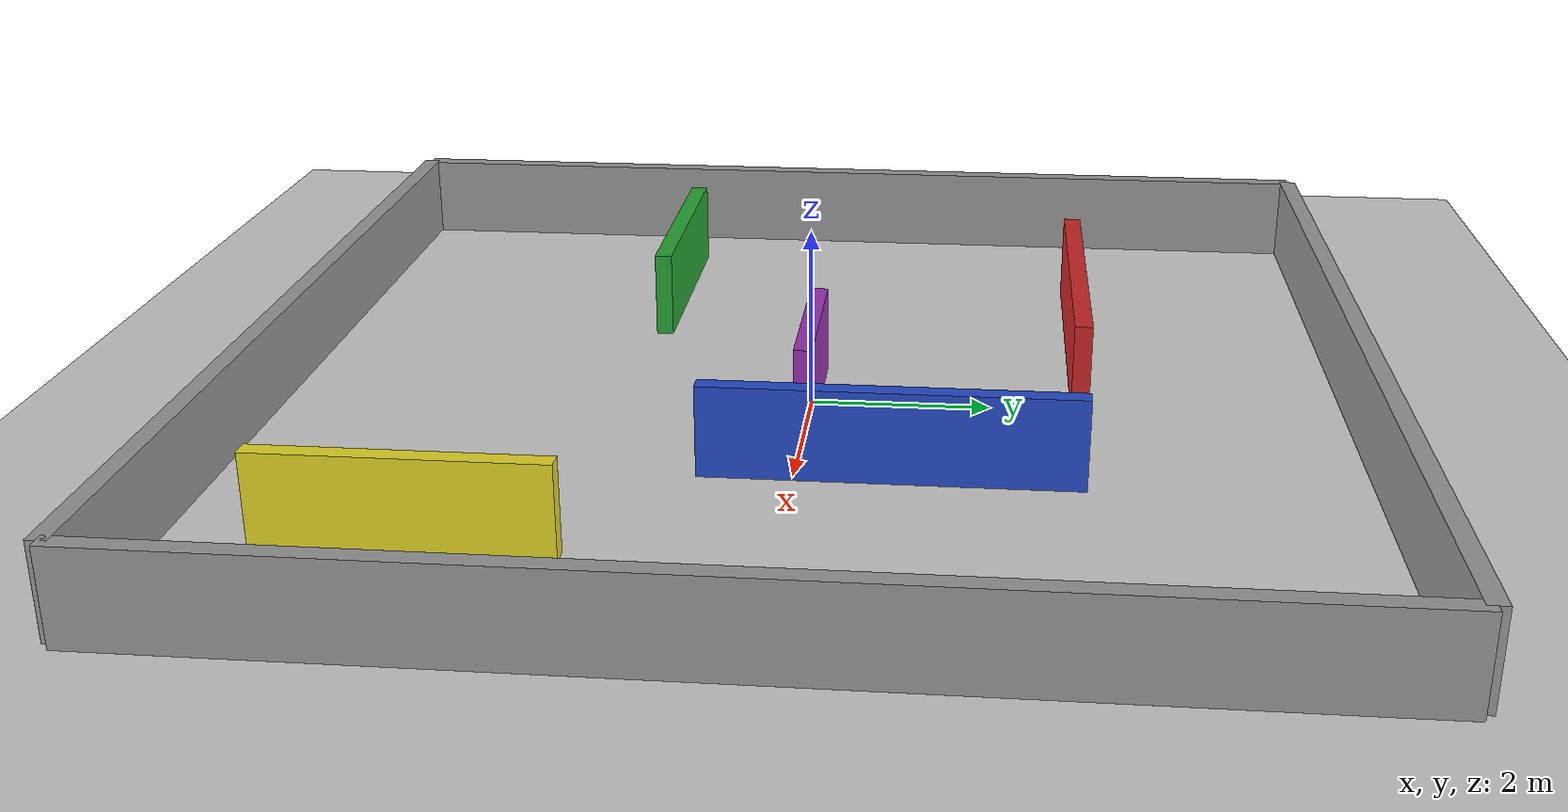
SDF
<?xml version="1.0"?>
<sdf version="1.6">
  <world name="maze_world">

    <!-- Physics -->
    <physics name="default_physics" default="0" type="ode">
      <gravity>0 0 -9.8066</gravity>
      <ode>
        <solver>
          <type>quick</type>
          <iters>150</iters>
          <sor>1.3</sor>
        </solver>
        <constraints>
          <cfm>0.00001</cfm>
          <erp>0.2</erp>
          <contact_max_correcting_vel>1000</contact_max_correcting_vel>
          <contact_surface_layer>0.01</contact_surface_layer>
        </constraints>
      </ode>
      <max_step_size>0.004</max_step_size>
      <real_time_factor>1</real_time_factor>
      <real_time_update_rate>250</real_time_update_rate>
    </physics>

    <!-- A global light source -->
    <include>
      <uri>model://sun</uri>
    </include>

    <!-- Ground plane -->
    <include>
      <uri>model://ground_plane</uri>
    </include>

    <!-- Maze walls -->
    <!-- Outer boundary walls -->
    <model name="boundary_north">
      <static>true</static>
      <link name="link">
        <collision name="collision">
          <geometry>
            <box>
              <size>12 0.2 1</size>
            </box>
          </geometry>
        </collision>
        <visual name="visual">
          <geometry>
            <box>
              <size>12 0.2 1</size>
            </box>
          </geometry>
          <material>
            <script>
              <uri>file://media/materials/scripts/gazebo.material</uri>
              <name>Gazebo/Grey</name>
            </script>
          </material>
        </visual>
      </link>
      <pose>0 6 0.5 0 0 0</pose>
    </model>

    <model name="boundary_south">
      <static>true</static>
      <link name="link">
        <collision name="collision">
          <geometry>
            <box>
              <size>12 0.2 1</size>
            </box>
          </geometry>
        </collision>
        <visual name="visual">
          <geometry>
            <box>
              <size>12 0.2 1</size>
            </box>
          </geometry>
          <material>
            <script>
              <uri>file://media/materials/scripts/gazebo.material</uri>
              <name>Gazebo/Grey</name>
            </script>
          </material>
        </visual>
      </link>
      <pose>0 -6 0.5 0 0 0</pose>
    </model>

    <model name="boundary_west">
      <static>true</static>
      <link name="link">
        <collision name="collision">
          <geometry>
            <box>
              <size>0.2 12 1</size>
            </box>
          </geometry>
        </collision>
        <visual name="visual">
          <geometry>
            <box>
              <size>0.2 12 1</size>
            </box>
          </geometry>
          <material>
            <script>
              <uri>file://media/materials/scripts/gazebo.material</uri>
              <name>Gazebo/Grey</name>
            </script>
          </material>
        </visual>
      </link>
      <pose>-6 0 0.5 0 0 0</pose>
    </model>

    <model name="boundary_east">
      <static>true</static>
      <link name="link">
        <collision name="collision">
          <geometry>
            <box>
              <size>0.2 12 1</size>
            </box>
          </geometry>
        </collision>
        <visual name="visual">
          <geometry>
            <box>
              <size>0.2 12 1</size>
            </box>
          </geometry>
          <material>
            <script>
              <uri>file://media/materials/scripts/gazebo.material</uri>
              <name>Gazebo/Grey</name>
            </script>
          </material>
        </visual>
      </link>
      <pose>6 0 0.5 0 0 0</pose>
    </model>

    <!-- Internal maze walls -->
    <model name="wall1">
      <static>true</static>
      <link name="link">
        <collision name="collision">
          <geometry>
            <box>
              <size>4 0.2 1</size>
            </box>
          </geometry>
        </collision>
        <visual name="visual">
          <geometry>
            <box>
              <size>4 0.2 1</size>
            </box>
          </geometry>
          <material>
            <script>
              <uri>file://media/materials/scripts/gazebo.material</uri>
              <name>Gazebo/Red</name>
            </script>
          </material>
        </visual>
      </link>
      <pose>-2 3 0.5 0 0 0</pose>
    </model>

    <model name="wall2">
      <static>true</static>
      <link name="link">
        <collision name="collision">
          <geometry>
            <box>
              <size>0.2 4 1</size>
            </box>
          </geometry>
        </collision>
        <visual name="visual">
          <geometry>
            <box>
              <size>0.2 4 1</size>
            </box>
          </geometry>
          <material>
            <script>
              <uri>file://media/materials/scripts/gazebo.material</uri>
              <name>Gazebo/Blue</name>
            </script>
          </material>
        </visual>
      </link>
      <pose>2 1 0.5 0 0 0</pose>
    </model>

    <model name="wall3">
      <static>true</static>
      <link name="link">
        <collision name="collision">
          <geometry>
            <box>
              <size>3 0.2 1</size>
            </box>
          </geometry>
        </collision>
        <visual name="visual">
          <geometry>
            <box>
              <size>3 0.2 1</size>
            </box>
          </geometry>
          <material>
            <script>
              <uri>file://media/materials/scripts/gazebo.material</uri>
              <name>Gazebo/Green</name>
            </script>
          </material>
        </visual>
      </link>
      <pose>-3.5 -2 0.5 0 0 0</pose>
    </model>

    <model name="wall4">
      <static>true</static>
      <link name="link">
        <collision name="collision">
          <geometry>
            <box>
              <size>0.2 3 1</size>
            </box>
          </geometry>
        </collision>
        <visual name="visual">
          <geometry>
            <box>
              <size>0.2 3 1</size>
            </box>
          </geometry>
          <material>
            <script>
              <uri>file://media/materials/scripts/gazebo.material</uri>
              <name>Gazebo/Yellow</name>
            </script>
          </material>
        </visual>
      </link>
      <pose>4 -3.5 0.5 0 0 0</pose>
    </model>

    <model name="wall5">
      <static>true</static>
      <link name="link">
        <collision name="collision">
          <geometry>
            <box>
              <size>2 0.2 1</size>
            </box>
          </geometry>
        </collision>
        <visual name="visual">
          <geometry>
            <box>
              <size>2 0.2 1</size>
            </box>
          </geometry>
          <material>
            <script>
              <uri>file://media/materials/scripts/gazebo.material</uri>
              <name>Gazebo/Purple</name>
            </script>
          </material>
        </visual>
      </link>
      <pose>0 0 0.5 0 0 0</pose>
    </model>

    <!-- Goal marker -->
    <model name="goal">
      <static>true</static>
      <link name="link">
        <collision name="collision">
          <geometry>
            <cylinder>
              <radius>0.5</radius>
              <length>0.1</length>
            </cylinder>
          </geometry>
        </collision>
        <visual name="visual">
          <geometry>
            <cylinder>
              <radius>0.5</radius>
              <length>0.1</length>
            </cylinder>
          </geometry>
          <material>
            <script>
              <uri>file://media/materials/scripts/gazebo.material</uri>
              <name>Gazebo/Orange</name>
            </script>
          </material>
        </visual>
      </link>
      <pose>5 5 0.05 0 0 0</pose>
    </model>

  </world>
</sdf>
